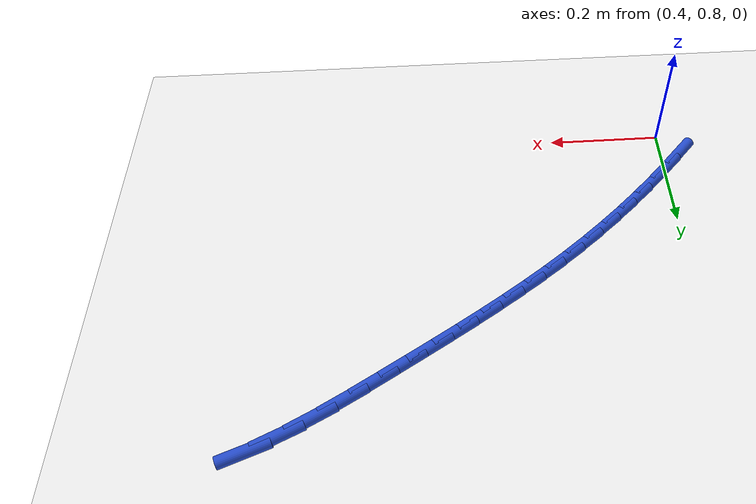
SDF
<sdf version="1.6">
 <world name="default">
  <model name="ground_plane">
   <static>1</static>
   <link name="link">
    <collision name="collision">
     <geometry><plane><normal>0 0 1</normal><size>100 100</size></plane></geometry>
     <surface><friction><ode><mu>100</mu><mu2>50</mu2></ode></friction></surface>
    </collision>
    <visual name="visual">
     <cast_shadows>0</cast_shadows>
     <geometry><plane><normal>0 0 1</normal><size>100 100</size></plane></geometry>
     <material>
      <script><uri>file://media/materials/scripts/gazebo.material</uri><name>Gazebo/WhiteGlow</name></script>
     </material>
    </visual>
   </link>
  </model>
  <model name="line">
   <link name="link_20">
    <pose>0.37044544936567797 0.8533999445610723 0.01 0 1.57 0.8278785825809821</pose>
    <collision name="collision">
     <geometry><cylinder><radius>0.01</radius><length>0.08</length></cylinder></geometry>
    </collision>
    <visual name="visual">
     <material>
      <script><name>Gazebo/Blue</name><uri>file://media/materials/scripts/gazebo.material</uri></script>
     </material>
     <geometry><cylinder><radius>0.01</radius><length>0.08</length></cylinder></geometry>
    </visual>
   </link>
   <link name="link_21">
    <pose>0.40270446218870654 0.8885231033530276 0.01 0 1.57 0.8015327229210458</pose>
    <collision name="collision">
     <geometry><cylinder><radius>0.01</radius><length>0.08</length></cylinder></geometry>
    </collision>
    <visual name="visual">
     <material>
      <script><name>Gazebo/Blue</name><uri>file://media/materials/scripts/gazebo.material</uri></script>
     </material>
     <geometry><cylinder><radius>0.01</radius><length>0.08</length></cylinder></geometry>
    </visual>
   </link>
   <link name="link_22">
    <pose>0.43575982779956207 0.9226627245660355 0.01 0 1.57 0.775495005708522</pose>
    <collision name="collision">
     <geometry><cylinder><radius>0.01</radius><length>0.08</length></cylinder></geometry>
    </collision>
    <visual name="visual">
     <material>
      <script><name>Gazebo/Blue</name><uri>file://media/materials/scripts/gazebo.material</uri></script>
     </material>
     <geometry><cylinder><radius>0.01</radius><length>0.08</length></cylinder></geometry>
    </visual>
   </link>
   <link name="link_23">
    <pose>0.46954204417919654 0.9557823795044883 0.01 0 1.57 0.7496809653231622</pose>
    <collision name="collision">
     <geometry><cylinder><radius>0.01</radius><length>0.08</length></cylinder></geometry>
    </collision>
    <visual name="visual">
     <material>
      <script><name>Gazebo/Blue</name><uri>file://media/materials/scripts/gazebo.material</uri></script>
     </material>
     <geometry><cylinder><radius>0.01</radius><length>0.08</length></cylinder></geometry>
    </visual>
   </link>
   <link name="link_24">
    <pose>0.5039816093085618 0.9878456394727786 0.01 0 1.57 0.7240040852488039</pose>
    <collision name="collision">
     <geometry><cylinder><radius>0.01</radius><length>0.08</length></cylinder></geometry>
    </collision>
    <visual name="visual">
     <material>
      <script><name>Gazebo/Blue</name><uri>file://media/materials/scripts/gazebo.material</uri></script>
     </material>
     <geometry><cylinder><radius>0.01</radius><length>0.08</length></cylinder></geometry>
    </visual>
   </link>
   <link name="link_25">
    <pose>0.5390090211686103 1.0188160757752995 0.01 0 1.57 0.6983752032161585</pose>
    <collision name="collision">
     <geometry><cylinder><radius>0.01</radius><length>0.08</length></cylinder></geometry>
    </collision>
    <visual name="visual">
     <material>
      <script><name>Gazebo/Blue</name><uri>file://media/materials/scripts/gazebo.material</uri></script>
     </material>
     <geometry><cylinder><radius>0.01</radius><length>0.08</length></cylinder></geometry>
    </visual>
   </link>
   <link name="link_26">
    <pose>0.5745547777402935 1.0486572597164425 0.01 0 1.57 0.6727018083050694</pose>
    <collision name="collision">
     <geometry><cylinder><radius>0.01</radius><length>0.08</length></cylinder></geometry>
    </collision>
    <visual name="visual">
     <material>
      <script><name>Gazebo/Blue</name><uri>file://media/materials/scripts/gazebo.material</uri></script>
     </material>
     <geometry><cylinder><radius>0.01</radius><length>0.08</length></cylinder></geometry>
    </visual>
   </link>
   <link name="link_27">
    <pose>0.6105493770045638 1.0773327626006008 0.01 0 1.57 0.6470819854404947</pose>
    <collision name="collision">
     <geometry><cylinder><radius>0.01</radius><length>0.08</length></cylinder></geometry>
    </collision>
    <visual name="visual">
     <material>
      <script><name>Gazebo/Blue</name><uri>file://media/materials/scripts/gazebo.material</uri></script>
     </material>
     <geometry><cylinder><radius>0.01</radius><length>0.08</length></cylinder></geometry>
    </visual>
   </link>
   <link name="link_28">
    <pose>0.6469410172642722 1.1048306575702471 0.01 0 1.57 0.6231741964512322</pose>
    <collision name="collision">
     <geometry><cylinder><radius>0.01</radius><length>0.08</length></cylinder></geometry>
    </collision>
    <visual name="visual">
     <material>
      <script><name>Gazebo/Blue</name><uri>file://media/materials/scripts/gazebo.material</uri></script>
     </material>
     <geometry><cylinder><radius>0.01</radius><length>0.08</length></cylinder></geometry>
    </visual>
   </link>
   <link name="link_29">
    <pose>0.6838204436448937 1.1313363395559395 0.01 0 1.57 0.602186844409367</pose>
    <collision name="collision">
     <geometry><cylinder><radius>0.01</radius><length>0.08</length></cylinder></geometry>
    </collision>
    <visual name="visual">
     <material>
      <script><name>Gazebo/Blue</name><uri>file://media/materials/scripts/gazebo.material</uri></script>
     </material>
     <geometry><cylinder><radius>0.01</radius><length>0.08</length></cylinder></geometry>
    </visual>
   </link>
   <link name="link_30">
    <pose>0.7213471885588422 1.1571304229410908 0.01 0 1.57 0.5845214186268726</pose>
    <collision name="collision">
     <geometry><cylinder><radius>0.01</radius><length>0.08</length></cylinder></geometry>
    </collision>
    <visual name="visual">
     <material>
      <script><name>Gazebo/Blue</name><uri>file://media/materials/scripts/gazebo.material</uri></script>
     </material>
     <geometry><cylinder><radius>0.01</radius><length>0.08</length></cylinder></geometry>
    </visual>
   </link>
   <link name="link_31">
    <pose>0.7596812288100578 1.1824941372622877 0.01 0 1.57 0.5704267616512975</pose>
    <collision name="collision">
     <geometry><cylinder><radius>0.01</radius><length>0.08</length></cylinder></geometry>
    </collision>
    <visual name="visual">
     <material>
      <script><name>Gazebo/Blue</name><uri>file://media/materials/scripts/gazebo.material</uri></script>
     </material>
     <geometry><cylinder><radius>0.01</radius><length>0.08</length></cylinder></geometry>
    </visual>
   </link>
   <link name="link_32">
    <pose>0.7989825412024805 1.2077087120561174 0.01 0 1.57 0.5599999479686203</pose>
    <collision name="collision">
     <geometry><cylinder><radius>0.01</radius><length>0.08</length></cylinder></geometry>
    </collision>
    <visual name="visual">
     <material>
      <script><name>Gazebo/Blue</name><uri>file://media/materials/scripts/gazebo.material</uri></script>
     </material>
     <geometry><cylinder><radius>0.01</radius><length>0.08</length></cylinder></geometry>
    </visual>
   </link>
   <link name="link_33">
    <pose>0.8394111025400496 1.2330553768591672 0.01 0 1.57 0.5531962998500586</pose>
    <collision name="collision">
     <geometry><cylinder><radius>0.01</radius><length>0.08</length></cylinder></geometry>
    </collision>
    <visual name="visual">
     <material>
      <script><name>Gazebo/Blue</name><uri>file://media/materials/scripts/gazebo.material</uri></script>
     </material>
     <geometry><cylinder><radius>0.01</radius><length>0.08</length></cylinder></geometry>
    </visual>
   </link>
   <link name="link_34">
    <pose>0.8811268896267054 1.2588153612080242 0.01 0 1.57 0.5497029477946016</pose>
    <collision name="collision">
     <geometry><cylinder><radius>0.01</radius><length>0.08</length></cylinder></geometry>
    </collision>
    <visual name="visual">
     <material>
      <script><name>Gazebo/Blue</name><uri>file://media/materials/scripts/gazebo.material</uri></script>
     </material>
     <geometry><cylinder><radius>0.01</radius><length>0.08</length></cylinder></geometry>
    </visual>
   </link>
   <link name="link_35">
    <pose>0.9242846089538607 1.285257947988467 0.01 0 1.57 0.5423663309234642</pose>
    <collision name="collision">
     <geometry><cylinder><radius>0.01</radius><length>0.08</length></cylinder></geometry>
    </collision>
    <visual name="visual">
     <material>
      <script><name>Gazebo/Blue</name><uri>file://media/materials/scripts/gazebo.material</uri></script>
     </material>
     <geometry><cylinder><radius>0.01</radius><length>0.08</length></cylinder></geometry>
    </visual>
   </link>
   <link name="link_36">
    <pose>0.9687846464274483 1.3120759307011325 0.01 0 1.57 0.5213591173747137</pose>
    <collision name="collision">
     <geometry><cylinder><radius>0.01</radius><length>0.08</length></cylinder></geometry>
    </collision>
    <visual name="visual">
     <material>
      <script><name>Gazebo/Blue</name><uri>file://media/materials/scripts/gazebo.material</uri></script>
     </material>
     <geometry><cylinder><radius>0.01</radius><length>0.08</length></cylinder></geometry>
    </visual>
   </link>
   <link name="link_37">
    <pose>1.0141651779996288 1.3381410517581362 0.01 0 1.57 0.48500732329421326</pose>
    <collision name="collision">
     <geometry><cylinder><radius>0.01</radius><length>0.08</length></cylinder></geometry>
    </collision>
    <visual name="visual">
     <material>
      <script><name>Gazebo/Blue</name><uri>file://media/materials/scripts/gazebo.material</uri></script>
     </material>
     <geometry><cylinder><radius>0.01</radius><length>0.08</length></cylinder></geometry>
    </visual>
   </link>
   <link name="link_38">
    <pose>1.0599366819786638 1.3622622690444524 0.01 0 1.57 0.43071782671561026</pose>
    <collision name="collision">
     <geometry><cylinder><radius>0.01</radius><length>0.08</length></cylinder></geometry>
    </collision>
    <visual name="visual">
     <material>
      <script><name>Gazebo/Blue</name><uri>file://media/materials/scripts/gazebo.material</uri></script>
     </material>
     <geometry><cylinder><radius>0.01</radius><length>0.08</length></cylinder></geometry>
    </visual>
   </link>
   <link name="link_39">
    <pose>1.1056096366728136 1.3832485404450559 0.01 0 1.57 0.35396774529181163</pose>
    <collision name="collision">
     <geometry><cylinder><radius>0.01</radius><length>0.08</length></cylinder></geometry>
    </collision>
    <visual name="visual">
     <material>
      <script><name>Gazebo/Blue</name><uri>file://media/materials/scripts/gazebo.material</uri></script>
     </material>
     <geometry><cylinder><radius>0.01</radius><length>0.08</length></cylinder></geometry>
    </visual>
   </link>
  </model>
 </world>
</sdf>
